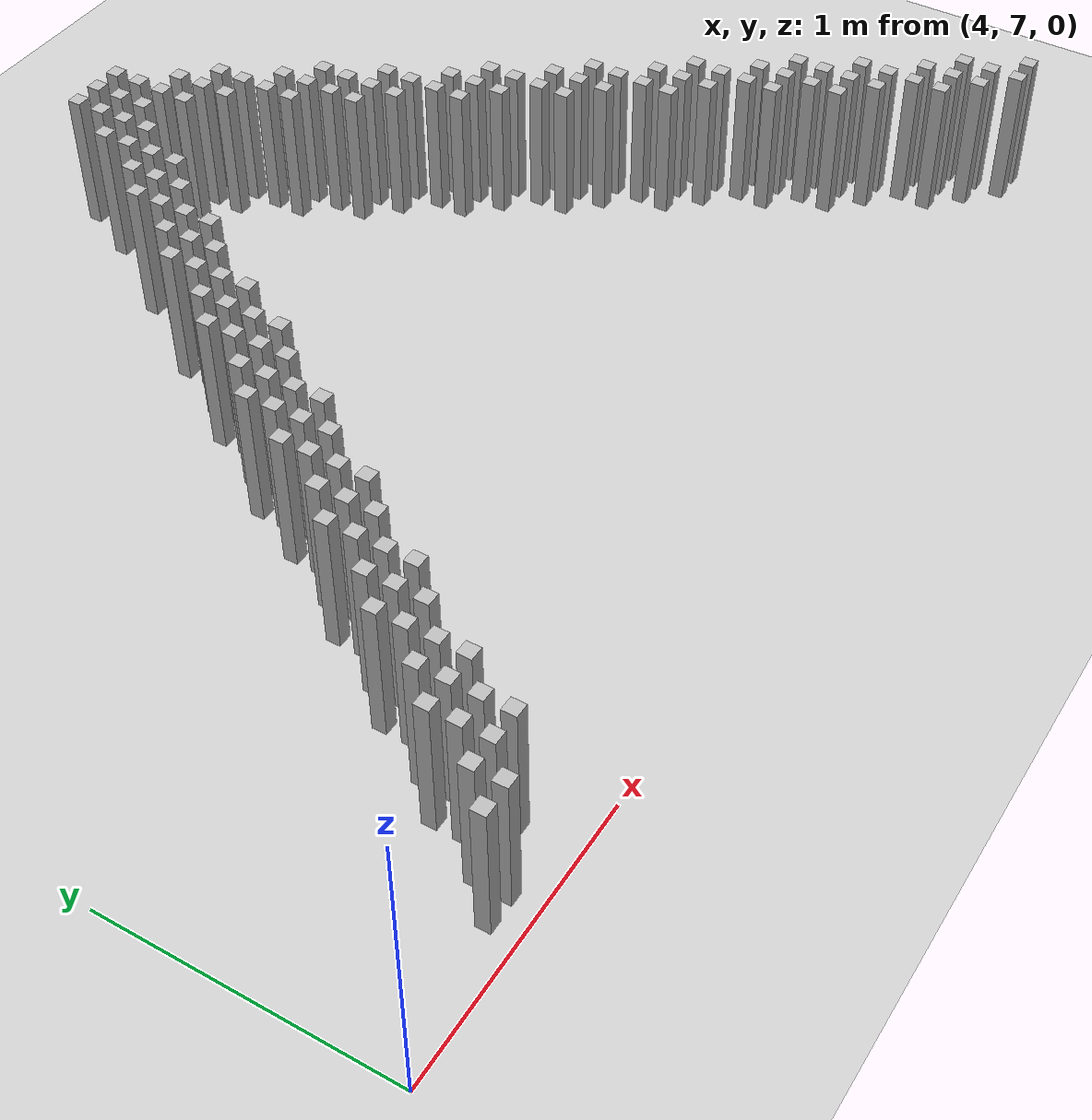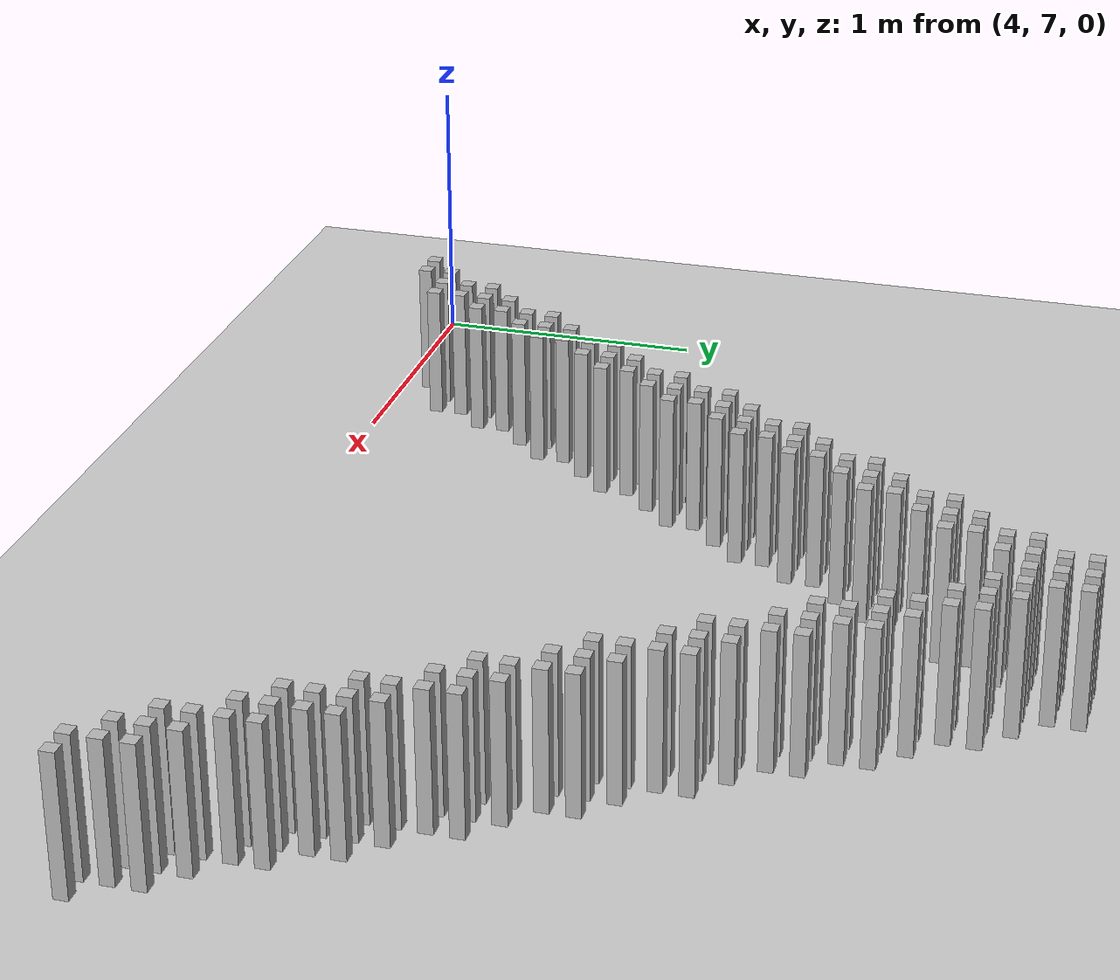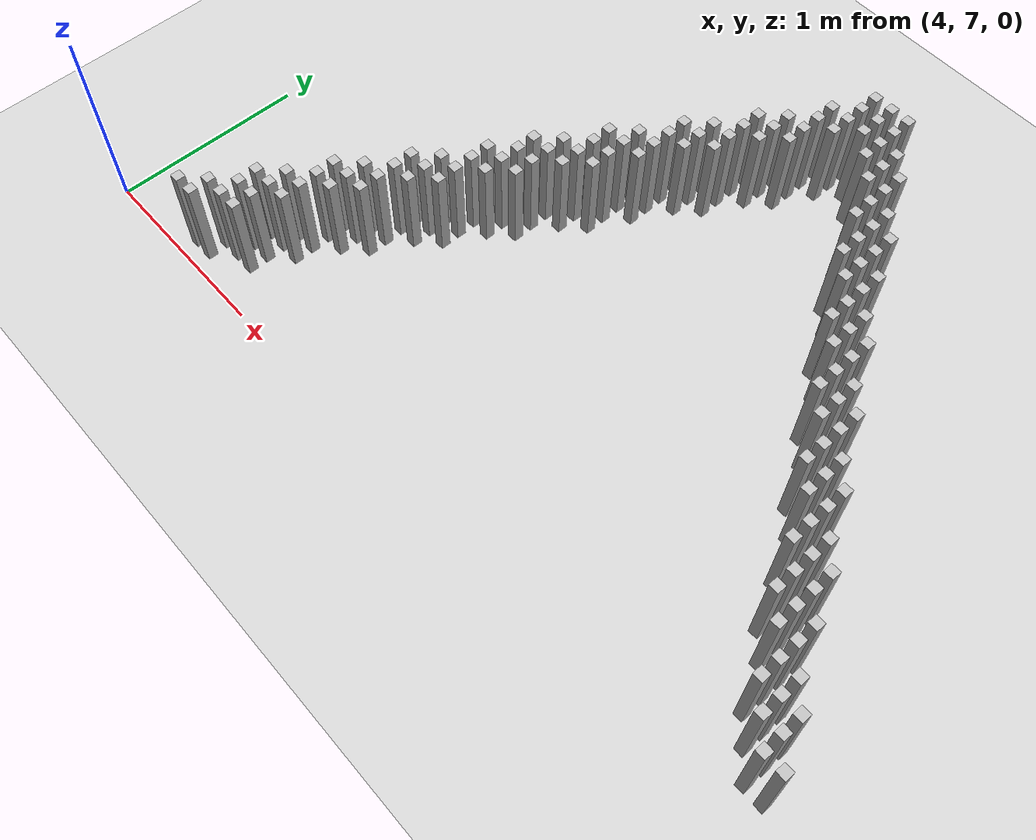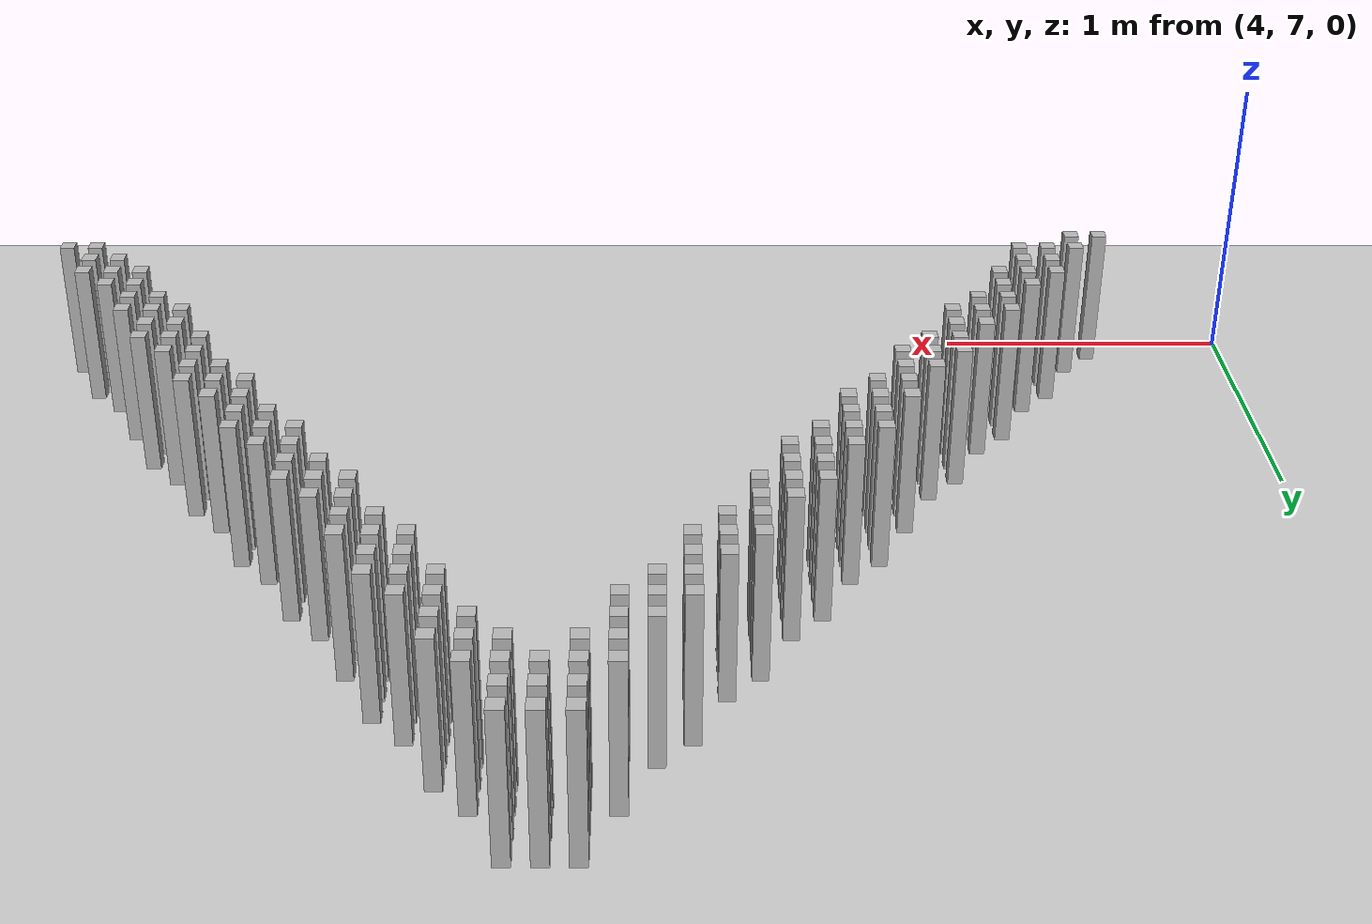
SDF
<sdf version="1.6">
 <world name="default_world">
  <include><uri>model://sun</uri></include>
  <include><uri>model://ground_plane</uri></include>
  <model name="wall_0">
   <static>true</static>
   <link name="link">
    <collision name="collision"><geometry><box><size>0.05 0.05 0.5</size></box></geometry></collision>
    <visual name="visual"><geometry><box><size>0.05 0.05 0.5</size></box></geometry></visual>
    <pose>6.300000000000001 9.9 0.25 0 0 0</pose>
   </link>
  </model>
  <model name="wall_1">
   <static>true</static>
   <link name="link">
    <collision name="collision"><geometry><box><size>0.05 0.05 0.5</size></box></geometry></collision>
    <visual name="visual"><geometry><box><size>0.05 0.05 0.5</size></box></geometry></visual>
    <pose>6.4 9.9 0.25 0 0 0</pose>
   </link>
  </model>
  <model name="wall_2">
   <static>true</static>
   <link name="link">
    <collision name="collision"><geometry><box><size>0.05 0.05 0.5</size></box></geometry></collision>
    <visual name="visual"><geometry><box><size>0.05 0.05 0.5</size></box></geometry></visual>
    <pose>6.5 9.9 0.25 0 0 0</pose>
   </link>
  </model>
  <model name="wall_3">
   <static>true</static>
   <link name="link">
    <collision name="collision"><geometry><box><size>0.05 0.05 0.5</size></box></geometry></collision>
    <visual name="visual"><geometry><box><size>0.05 0.05 0.5</size></box></geometry></visual>
    <pose>6.300000000000001 9.8 0.25 0 0 0</pose>
   </link>
  </model>
  <model name="wall_4">
   <static>true</static>
   <link name="link">
    <collision name="collision"><geometry><box><size>0.05 0.05 0.5</size></box></geometry></collision>
    <visual name="visual"><geometry><box><size>0.05 0.05 0.5</size></box></geometry></visual>
    <pose>6.4 9.8 0.25 0 0 0</pose>
   </link>
  </model>
  <model name="wall_5">
   <static>true</static>
   <link name="link">
    <collision name="collision"><geometry><box><size>0.05 0.05 0.5</size></box></geometry></collision>
    <visual name="visual"><geometry><box><size>0.05 0.05 0.5</size></box></geometry></visual>
    <pose>6.5 9.8 0.25 0 0 0</pose>
   </link>
  </model>
  <model name="wall_6">
   <static>true</static>
   <link name="link">
    <collision name="collision"><geometry><box><size>0.05 0.05 0.5</size></box></geometry></collision>
    <visual name="visual"><geometry><box><size>0.05 0.05 0.5</size></box></geometry></visual>
    <pose>6.2 9.700000000000001 0.25 0 0 0</pose>
   </link>
  </model>
  <model name="wall_7">
   <static>true</static>
   <link name="link">
    <collision name="collision"><geometry><box><size>0.05 0.05 0.5</size></box></geometry></collision>
    <visual name="visual"><geometry><box><size>0.05 0.05 0.5</size></box></geometry></visual>
    <pose>6.300000000000001 9.700000000000001 0.25 0 0 0</pose>
   </link>
  </model>
  <model name="wall_8">
   <static>true</static>
   <link name="link">
    <collision name="collision"><geometry><box><size>0.05 0.05 0.5</size></box></geometry></collision>
    <visual name="visual"><geometry><box><size>0.05 0.05 0.5</size></box></geometry></visual>
    <pose>6.4 9.700000000000001 0.25 0 0 0</pose>
   </link>
  </model>
  <model name="wall_9">
   <static>true</static>
   <link name="link">
    <collision name="collision"><geometry><box><size>0.05 0.05 0.5</size></box></geometry></collision>
    <visual name="visual"><geometry><box><size>0.05 0.05 0.5</size></box></geometry></visual>
    <pose>6.5 9.700000000000001 0.25 0 0 0</pose>
   </link>
  </model>
  <model name="wall_10">
   <static>true</static>
   <link name="link">
    <collision name="collision"><geometry><box><size>0.05 0.05 0.5</size></box></geometry></collision>
    <visual name="visual"><geometry><box><size>0.05 0.05 0.5</size></box></geometry></visual>
    <pose>6.6000000000000005 9.700000000000001 0.25 0 0 0</pose>
   </link>
  </model>
  <model name="wall_11">
   <static>true</static>
   <link name="link">
    <collision name="collision"><geometry><box><size>0.05 0.05 0.5</size></box></geometry></collision>
    <visual name="visual"><geometry><box><size>0.05 0.05 0.5</size></box></geometry></visual>
    <pose>6.2 9.600000000000001 0.25 0 0 0</pose>
   </link>
  </model>
  <model name="wall_12">
   <static>true</static>
   <link name="link">
    <collision name="collision"><geometry><box><size>0.05 0.05 0.5</size></box></geometry></collision>
    <visual name="visual"><geometry><box><size>0.05 0.05 0.5</size></box></geometry></visual>
    <pose>6.300000000000001 9.600000000000001 0.25 0 0 0</pose>
   </link>
  </model>
  <model name="wall_13">
   <static>true</static>
   <link name="link">
    <collision name="collision"><geometry><box><size>0.05 0.05 0.5</size></box></geometry></collision>
    <visual name="visual"><geometry><box><size>0.05 0.05 0.5</size></box></geometry></visual>
    <pose>6.5 9.600000000000001 0.25 0 0 0</pose>
   </link>
  </model>
  <model name="wall_14">
   <static>true</static>
   <link name="link">
    <collision name="collision"><geometry><box><size>0.05 0.05 0.5</size></box></geometry></collision>
    <visual name="visual"><geometry><box><size>0.05 0.05 0.5</size></box></geometry></visual>
    <pose>6.6000000000000005 9.600000000000001 0.25 0 0 0</pose>
   </link>
  </model>
  <model name="wall_15">
   <static>true</static>
   <link name="link">
    <collision name="collision"><geometry><box><size>0.05 0.05 0.5</size></box></geometry></collision>
    <visual name="visual"><geometry><box><size>0.05 0.05 0.5</size></box></geometry></visual>
    <pose>6.7 9.600000000000001 0.25 0 0 0</pose>
   </link>
  </model>
  <model name="wall_16">
   <static>true</static>
   <link name="link">
    <collision name="collision"><geometry><box><size>0.05 0.05 0.5</size></box></geometry></collision>
    <visual name="visual"><geometry><box><size>0.05 0.05 0.5</size></box></geometry></visual>
    <pose>6.1000000000000005 9.5 0.25 0 0 0</pose>
   </link>
  </model>
  <model name="wall_17">
   <static>true</static>
   <link name="link">
    <collision name="collision"><geometry><box><size>0.05 0.05 0.5</size></box></geometry></collision>
    <visual name="visual"><geometry><box><size>0.05 0.05 0.5</size></box></geometry></visual>
    <pose>6.2 9.5 0.25 0 0 0</pose>
   </link>
  </model>
  <model name="wall_18">
   <static>true</static>
   <link name="link">
    <collision name="collision"><geometry><box><size>0.05 0.05 0.5</size></box></geometry></collision>
    <visual name="visual"><geometry><box><size>0.05 0.05 0.5</size></box></geometry></visual>
    <pose>6.6000000000000005 9.5 0.25 0 0 0</pose>
   </link>
  </model>
  <model name="wall_19">
   <static>true</static>
   <link name="link">
    <collision name="collision"><geometry><box><size>0.05 0.05 0.5</size></box></geometry></collision>
    <visual name="visual"><geometry><box><size>0.05 0.05 0.5</size></box></geometry></visual>
    <pose>6.7 9.5 0.25 0 0 0</pose>
   </link>
  </model>
  <model name="wall_20">
   <static>true</static>
   <link name="link">
    <collision name="collision"><geometry><box><size>0.05 0.05 0.5</size></box></geometry></collision>
    <visual name="visual"><geometry><box><size>0.05 0.05 0.5</size></box></geometry></visual>
    <pose>6.0 9.4 0.25 0 0 0</pose>
   </link>
  </model>
  <model name="wall_21">
   <static>true</static>
   <link name="link">
    <collision name="collision"><geometry><box><size>0.05 0.05 0.5</size></box></geometry></collision>
    <visual name="visual"><geometry><box><size>0.05 0.05 0.5</size></box></geometry></visual>
    <pose>6.1000000000000005 9.4 0.25 0 0 0</pose>
   </link>
  </model>
  <model name="wall_22">
   <static>true</static>
   <link name="link">
    <collision name="collision"><geometry><box><size>0.05 0.05 0.5</size></box></geometry></collision>
    <visual name="visual"><geometry><box><size>0.05 0.05 0.5</size></box></geometry></visual>
    <pose>6.2 9.4 0.25 0 0 0</pose>
   </link>
  </model>
  <model name="wall_23">
   <static>true</static>
   <link name="link">
    <collision name="collision"><geometry><box><size>0.05 0.05 0.5</size></box></geometry></collision>
    <visual name="visual"><geometry><box><size>0.05 0.05 0.5</size></box></geometry></visual>
    <pose>6.7 9.4 0.25 0 0 0</pose>
   </link>
  </model>
  <model name="wall_24">
   <static>true</static>
   <link name="link">
    <collision name="collision"><geometry><box><size>0.05 0.05 0.5</size></box></geometry></collision>
    <visual name="visual"><geometry><box><size>0.05 0.05 0.5</size></box></geometry></visual>
    <pose>6.800000000000001 9.4 0.25 0 0 0</pose>
   </link>
  </model>
  <model name="wall_25">
   <static>true</static>
   <link name="link">
    <collision name="collision"><geometry><box><size>0.05 0.05 0.5</size></box></geometry></collision>
    <visual name="visual"><geometry><box><size>0.05 0.05 0.5</size></box></geometry></visual>
    <pose>6.0 9.3 0.25 0 0 0</pose>
   </link>
  </model>
  <model name="wall_26">
   <static>true</static>
   <link name="link">
    <collision name="collision"><geometry><box><size>0.05 0.05 0.5</size></box></geometry></collision>
    <visual name="visual"><geometry><box><size>0.05 0.05 0.5</size></box></geometry></visual>
    <pose>6.1000000000000005 9.3 0.25 0 0 0</pose>
   </link>
  </model>
  <model name="wall_27">
   <static>true</static>
   <link name="link">
    <collision name="collision"><geometry><box><size>0.05 0.05 0.5</size></box></geometry></collision>
    <visual name="visual"><geometry><box><size>0.05 0.05 0.5</size></box></geometry></visual>
    <pose>6.7 9.3 0.25 0 0 0</pose>
   </link>
  </model>
  <model name="wall_28">
   <static>true</static>
   <link name="link">
    <collision name="collision"><geometry><box><size>0.05 0.05 0.5</size></box></geometry></collision>
    <visual name="visual"><geometry><box><size>0.05 0.05 0.5</size></box></geometry></visual>
    <pose>6.800000000000001 9.3 0.25 0 0 0</pose>
   </link>
  </model>
  <model name="wall_29">
   <static>true</static>
   <link name="link">
    <collision name="collision"><geometry><box><size>0.05 0.05 0.5</size></box></geometry></collision>
    <visual name="visual"><geometry><box><size>0.05 0.05 0.5</size></box></geometry></visual>
    <pose>6.9 9.3 0.25 0 0 0</pose>
   </link>
  </model>
  <model name="wall_30">
   <static>true</static>
   <link name="link">
    <collision name="collision"><geometry><box><size>0.05 0.05 0.5</size></box></geometry></collision>
    <visual name="visual"><geometry><box><size>0.05 0.05 0.5</size></box></geometry></visual>
    <pose>5.9 9.200000000000001 0.25 0 0 0</pose>
   </link>
  </model>
  <model name="wall_31">
   <static>true</static>
   <link name="link">
    <collision name="collision"><geometry><box><size>0.05 0.05 0.5</size></box></geometry></collision>
    <visual name="visual"><geometry><box><size>0.05 0.05 0.5</size></box></geometry></visual>
    <pose>6.0 9.200000000000001 0.25 0 0 0</pose>
   </link>
  </model>
  <model name="wall_32">
   <static>true</static>
   <link name="link">
    <collision name="collision"><geometry><box><size>0.05 0.05 0.5</size></box></geometry></collision>
    <visual name="visual"><geometry><box><size>0.05 0.05 0.5</size></box></geometry></visual>
    <pose>6.800000000000001 9.200000000000001 0.25 0 0 0</pose>
   </link>
  </model>
  <model name="wall_33">
   <static>true</static>
   <link name="link">
    <collision name="collision"><geometry><box><size>0.05 0.05 0.5</size></box></geometry></collision>
    <visual name="visual"><geometry><box><size>0.05 0.05 0.5</size></box></geometry></visual>
    <pose>6.9 9.200000000000001 0.25 0 0 0</pose>
   </link>
  </model>
  <model name="wall_34">
   <static>true</static>
   <link name="link">
    <collision name="collision"><geometry><box><size>0.05 0.05 0.5</size></box></geometry></collision>
    <visual name="visual"><geometry><box><size>0.05 0.05 0.5</size></box></geometry></visual>
    <pose>5.800000000000001 9.1 0.25 0 0 0</pose>
   </link>
  </model>
  <model name="wall_35">
   <static>true</static>
   <link name="link">
    <collision name="collision"><geometry><box><size>0.05 0.05 0.5</size></box></geometry></collision>
    <visual name="visual"><geometry><box><size>0.05 0.05 0.5</size></box></geometry></visual>
    <pose>5.9 9.1 0.25 0 0 0</pose>
   </link>
  </model>
  <model name="wall_36">
   <static>true</static>
   <link name="link">
    <collision name="collision"><geometry><box><size>0.05 0.05 0.5</size></box></geometry></collision>
    <visual name="visual"><geometry><box><size>0.05 0.05 0.5</size></box></geometry></visual>
    <pose>6.0 9.1 0.25 0 0 0</pose>
   </link>
  </model>
  <model name="wall_37">
   <static>true</static>
   <link name="link">
    <collision name="collision"><geometry><box><size>0.05 0.05 0.5</size></box></geometry></collision>
    <visual name="visual"><geometry><box><size>0.05 0.05 0.5</size></box></geometry></visual>
    <pose>6.800000000000001 9.1 0.25 0 0 0</pose>
   </link>
  </model>
  <model name="wall_38">
   <static>true</static>
   <link name="link">
    <collision name="collision"><geometry><box><size>0.05 0.05 0.5</size></box></geometry></collision>
    <visual name="visual"><geometry><box><size>0.05 0.05 0.5</size></box></geometry></visual>
    <pose>6.9 9.1 0.25 0 0 0</pose>
   </link>
  </model>
  <model name="wall_39">
   <static>true</static>
   <link name="link">
    <collision name="collision"><geometry><box><size>0.05 0.05 0.5</size></box></geometry></collision>
    <visual name="visual"><geometry><box><size>0.05 0.05 0.5</size></box></geometry></visual>
    <pose>7.0 9.1 0.25 0 0 0</pose>
   </link>
  </model>
  <model name="wall_40">
   <static>true</static>
   <link name="link">
    <collision name="collision"><geometry><box><size>0.05 0.05 0.5</size></box></geometry></collision>
    <visual name="visual"><geometry><box><size>0.05 0.05 0.5</size></box></geometry></visual>
    <pose>5.800000000000001 9.0 0.25 0 0 0</pose>
   </link>
  </model>
  <model name="wall_41">
   <static>true</static>
   <link name="link">
    <collision name="collision"><geometry><box><size>0.05 0.05 0.5</size></box></geometry></collision>
    <visual name="visual"><geometry><box><size>0.05 0.05 0.5</size></box></geometry></visual>
    <pose>5.9 9.0 0.25 0 0 0</pose>
   </link>
  </model>
  <model name="wall_42">
   <static>true</static>
   <link name="link">
    <collision name="collision"><geometry><box><size>0.05 0.05 0.5</size></box></geometry></collision>
    <visual name="visual"><geometry><box><size>0.05 0.05 0.5</size></box></geometry></visual>
    <pose>6.9 9.0 0.25 0 0 0</pose>
   </link>
  </model>
  <model name="wall_43">
   <static>true</static>
   <link name="link">
    <collision name="collision"><geometry><box><size>0.05 0.05 0.5</size></box></geometry></collision>
    <visual name="visual"><geometry><box><size>0.05 0.05 0.5</size></box></geometry></visual>
    <pose>7.0 9.0 0.25 0 0 0</pose>
   </link>
  </model>
  <model name="wall_44">
   <static>true</static>
   <link name="link">
    <collision name="collision"><geometry><box><size>0.05 0.05 0.5</size></box></geometry></collision>
    <visual name="visual"><geometry><box><size>0.05 0.05 0.5</size></box></geometry></visual>
    <pose>5.7 8.9 0.25 0 0 0</pose>
   </link>
  </model>
  <model name="wall_45">
   <static>true</static>
   <link name="link">
    <collision name="collision"><geometry><box><size>0.05 0.05 0.5</size></box></geometry></collision>
    <visual name="visual"><geometry><box><size>0.05 0.05 0.5</size></box></geometry></visual>
    <pose>5.800000000000001 8.9 0.25 0 0 0</pose>
   </link>
  </model>
  <model name="wall_46">
   <static>true</static>
   <link name="link">
    <collision name="collision"><geometry><box><size>0.05 0.05 0.5</size></box></geometry></collision>
    <visual name="visual"><geometry><box><size>0.05 0.05 0.5</size></box></geometry></visual>
    <pose>7.0 8.9 0.25 0 0 0</pose>
   </link>
  </model>
  <model name="wall_47">
   <static>true</static>
   <link name="link">
    <collision name="collision"><geometry><box><size>0.05 0.05 0.5</size></box></geometry></collision>
    <visual name="visual"><geometry><box><size>0.05 0.05 0.5</size></box></geometry></visual>
    <pose>7.1000000000000005 8.9 0.25 0 0 0</pose>
   </link>
  </model>
  <model name="wall_48">
   <static>true</static>
   <link name="link">
    <collision name="collision"><geometry><box><size>0.05 0.05 0.5</size></box></geometry></collision>
    <visual name="visual"><geometry><box><size>0.05 0.05 0.5</size></box></geometry></visual>
    <pose>5.6000000000000005 8.8 0.25 0 0 0</pose>
   </link>
  </model>
  <model name="wall_49">
   <static>true</static>
   <link name="link">
    <collision name="collision"><geometry><box><size>0.05 0.05 0.5</size></box></geometry></collision>
    <visual name="visual"><geometry><box><size>0.05 0.05 0.5</size></box></geometry></visual>
    <pose>5.7 8.8 0.25 0 0 0</pose>
   </link>
  </model>
  <model name="wall_50">
   <static>true</static>
   <link name="link">
    <collision name="collision"><geometry><box><size>0.05 0.05 0.5</size></box></geometry></collision>
    <visual name="visual"><geometry><box><size>0.05 0.05 0.5</size></box></geometry></visual>
    <pose>5.800000000000001 8.8 0.25 0 0 0</pose>
   </link>
  </model>
  <model name="wall_51">
   <static>true</static>
   <link name="link">
    <collision name="collision"><geometry><box><size>0.05 0.05 0.5</size></box></geometry></collision>
    <visual name="visual"><geometry><box><size>0.05 0.05 0.5</size></box></geometry></visual>
    <pose>7.0 8.8 0.25 0 0 0</pose>
   </link>
  </model>
  <model name="wall_52">
   <static>true</static>
   <link name="link">
    <collision name="collision"><geometry><box><size>0.05 0.05 0.5</size></box></geometry></collision>
    <visual name="visual"><geometry><box><size>0.05 0.05 0.5</size></box></geometry></visual>
    <pose>7.1000000000000005 8.8 0.25 0 0 0</pose>
   </link>
  </model>
  <model name="wall_53">
   <static>true</static>
   <link name="link">
    <collision name="collision"><geometry><box><size>0.05 0.05 0.5</size></box></geometry></collision>
    <visual name="visual"><geometry><box><size>0.05 0.05 0.5</size></box></geometry></visual>
    <pose>7.2 8.8 0.25 0 0 0</pose>
   </link>
  </model>
  <model name="wall_54">
   <static>true</static>
   <link name="link">
    <collision name="collision"><geometry><box><size>0.05 0.05 0.5</size></box></geometry></collision>
    <visual name="visual"><geometry><box><size>0.05 0.05 0.5</size></box></geometry></visual>
    <pose>5.6000000000000005 8.700000000000001 0.25 0 0 0</pose>
   </link>
  </model>
  <model name="wall_55">
   <static>true</static>
   <link name="link">
    <collision name="collision"><geometry><box><size>0.05 0.05 0.5</size></box></geometry></collision>
    <visual name="visual"><geometry><box><size>0.05 0.05 0.5</size></box></geometry></visual>
    <pose>5.7 8.700000000000001 0.25 0 0 0</pose>
   </link>
  </model>
  <model name="wall_56">
   <static>true</static>
   <link name="link">
    <collision name="collision"><geometry><box><size>0.05 0.05 0.5</size></box></geometry></collision>
    <visual name="visual"><geometry><box><size>0.05 0.05 0.5</size></box></geometry></visual>
    <pose>7.1000000000000005 8.700000000000001 0.25 0 0 0</pose>
   </link>
  </model>
  <model name="wall_57">
   <static>true</static>
   <link name="link">
    <collision name="collision"><geometry><box><size>0.05 0.05 0.5</size></box></geometry></collision>
    <visual name="visual"><geometry><box><size>0.05 0.05 0.5</size></box></geometry></visual>
    <pose>7.2 8.700000000000001 0.25 0 0 0</pose>
   </link>
  </model>
  <model name="wall_58">
   <static>true</static>
   <link name="link">
    <collision name="collision"><geometry><box><size>0.05 0.05 0.5</size></box></geometry></collision>
    <visual name="visual"><geometry><box><size>0.05 0.05 0.5</size></box></geometry></visual>
    <pose>5.5 8.6 0.25 0 0 0</pose>
   </link>
  </model>
  <model name="wall_59">
   <static>true</static>
   <link name="link">
    <collision name="collision"><geometry><box><size>0.05 0.05 0.5</size></box></geometry></collision>
    <visual name="visual"><geometry><box><size>0.05 0.05 0.5</size></box></geometry></visual>
    <pose>5.6000000000000005 8.6 0.25 0 0 0</pose>
   </link>
  </model>
  <model name="wall_60">
   <static>true</static>
   <link name="link">
    <collision name="collision"><geometry><box><size>0.05 0.05 0.5</size></box></geometry></collision>
    <visual name="visual"><geometry><box><size>0.05 0.05 0.5</size></box></geometry></visual>
    <pose>5.7 8.6 0.25 0 0 0</pose>
   </link>
  </model>
  <model name="wall_61">
   <static>true</static>
   <link name="link">
    <collision name="collision"><geometry><box><size>0.05 0.05 0.5</size></box></geometry></collision>
    <visual name="visual"><geometry><box><size>0.05 0.05 0.5</size></box></geometry></visual>
    <pose>7.2 8.6 0.25 0 0 0</pose>
   </link>
  </model>
  <model name="wall_62">
   <static>true</static>
   <link name="link">
    <collision name="collision"><geometry><box><size>0.05 0.05 0.5</size></box></geometry></collision>
    <visual name="visual"><geometry><box><size>0.05 0.05 0.5</size></box></geometry></visual>
    <pose>7.300000000000001 8.6 0.25 0 0 0</pose>
   </link>
  </model>
  <model name="wall_63">
   <static>true</static>
   <link name="link">
    <collision name="collision"><geometry><box><size>0.05 0.05 0.5</size></box></geometry></collision>
    <visual name="visual"><geometry><box><size>0.05 0.05 0.5</size></box></geometry></visual>
    <pose>5.4 8.5 0.25 0 0 0</pose>
   </link>
  </model>
  <model name="wall_64">
   <static>true</static>
   <link name="link">
    <collision name="collision"><geometry><box><size>0.05 0.05 0.5</size></box></geometry></collision>
    <visual name="visual"><geometry><box><size>0.05 0.05 0.5</size></box></geometry></visual>
    <pose>5.5 8.5 0.25 0 0 0</pose>
   </link>
  </model>
  <model name="wall_65">
   <static>true</static>
   <link name="link">
    <collision name="collision"><geometry><box><size>0.05 0.05 0.5</size></box></geometry></collision>
    <visual name="visual"><geometry><box><size>0.05 0.05 0.5</size></box></geometry></visual>
    <pose>5.6000000000000005 8.5 0.25 0 0 0</pose>
   </link>
  </model>
  <model name="wall_66">
   <static>true</static>
   <link name="link">
    <collision name="collision"><geometry><box><size>0.05 0.05 0.5</size></box></geometry></collision>
    <visual name="visual"><geometry><box><size>0.05 0.05 0.5</size></box></geometry></visual>
    <pose>7.2 8.5 0.25 0 0 0</pose>
   </link>
  </model>
  <model name="wall_67">
   <static>true</static>
   <link name="link">
    <collision name="collision"><geometry><box><size>0.05 0.05 0.5</size></box></geometry></collision>
    <visual name="visual"><geometry><box><size>0.05 0.05 0.5</size></box></geometry></visual>
    <pose>7.300000000000001 8.5 0.25 0 0 0</pose>
   </link>
  </model>
  <model name="wall_68">
   <static>true</static>
   <link name="link">
    <collision name="collision"><geometry><box><size>0.05 0.05 0.5</size></box></geometry></collision>
    <visual name="visual"><geometry><box><size>0.05 0.05 0.5</size></box></geometry></visual>
    <pose>7.4 8.5 0.25 0 0 0</pose>
   </link>
  </model>
  <model name="wall_69">
   <static>true</static>
   <link name="link">
    <collision name="collision"><geometry><box><size>0.05 0.05 0.5</size></box></geometry></collision>
    <visual name="visual"><geometry><box><size>0.05 0.05 0.5</size></box></geometry></visual>
    <pose>5.4 8.4 0.25 0 0 0</pose>
   </link>
  </model>
  <model name="wall_70">
   <static>true</static>
   <link name="link">
    <collision name="collision"><geometry><box><size>0.05 0.05 0.5</size></box></geometry></collision>
    <visual name="visual"><geometry><box><size>0.05 0.05 0.5</size></box></geometry></visual>
    <pose>5.5 8.4 0.25 0 0 0</pose>
   </link>
  </model>
  <model name="wall_71">
   <static>true</static>
   <link name="link">
    <collision name="collision"><geometry><box><size>0.05 0.05 0.5</size></box></geometry></collision>
    <visual name="visual"><geometry><box><size>0.05 0.05 0.5</size></box></geometry></visual>
    <pose>7.300000000000001 8.4 0.25 0 0 0</pose>
   </link>
  </model>
  <model name="wall_72">
   <static>true</static>
   <link name="link">
    <collision name="collision"><geometry><box><size>0.05 0.05 0.5</size></box></geometry></collision>
    <visual name="visual"><geometry><box><size>0.05 0.05 0.5</size></box></geometry></visual>
    <pose>7.4 8.4 0.25 0 0 0</pose>
   </link>
  </model>
  <model name="wall_73">
   <static>true</static>
   <link name="link">
    <collision name="collision"><geometry><box><size>0.05 0.05 0.5</size></box></geometry></collision>
    <visual name="visual"><geometry><box><size>0.05 0.05 0.5</size></box></geometry></visual>
    <pose>5.300000000000001 8.3 0.25 0 0 0</pose>
   </link>
  </model>
  <model name="wall_74">
   <static>true</static>
   <link name="link">
    <collision name="collision"><geometry><box><size>0.05 0.05 0.5</size></box></geometry></collision>
    <visual name="visual"><geometry><box><size>0.05 0.05 0.5</size></box></geometry></visual>
    <pose>5.4 8.3 0.25 0 0 0</pose>
   </link>
  </model>
  <model name="wall_75">
   <static>true</static>
   <link name="link">
    <collision name="collision"><geometry><box><size>0.05 0.05 0.5</size></box></geometry></collision>
    <visual name="visual"><geometry><box><size>0.05 0.05 0.5</size></box></geometry></visual>
    <pose>5.5 8.3 0.25 0 0 0</pose>
   </link>
  </model>
  <model name="wall_76">
   <static>true</static>
   <link name="link">
    <collision name="collision"><geometry><box><size>0.05 0.05 0.5</size></box></geometry></collision>
    <visual name="visual"><geometry><box><size>0.05 0.05 0.5</size></box></geometry></visual>
    <pose>7.4 8.3 0.25 0 0 0</pose>
   </link>
  </model>
  <model name="wall_77">
   <static>true</static>
   <link name="link">
    <collision name="collision"><geometry><box><size>0.05 0.05 0.5</size></box></geometry></collision>
    <visual name="visual"><geometry><box><size>0.05 0.05 0.5</size></box></geometry></visual>
    <pose>7.5 8.3 0.25 0 0 0</pose>
   </link>
  </model>
  <model name="wall_78">
   <static>true</static>
   <link name="link">
    <collision name="collision"><geometry><box><size>0.05 0.05 0.5</size></box></geometry></collision>
    <visual name="visual"><geometry><box><size>0.05 0.05 0.5</size></box></geometry></visual>
    <pose>5.300000000000001 8.200000000000001 0.25 0 0 0</pose>
   </link>
  </model>
  <model name="wall_79">
   <static>true</static>
   <link name="link">
    <collision name="collision"><geometry><box><size>0.05 0.05 0.5</size></box></geometry></collision>
    <visual name="visual"><geometry><box><size>0.05 0.05 0.5</size></box></geometry></visual>
    <pose>5.4 8.200000000000001 0.25 0 0 0</pose>
   </link>
  </model>
  <model name="wall_80">
   <static>true</static>
   <link name="link">
    <collision name="collision"><geometry><box><size>0.05 0.05 0.5</size></box></geometry></collision>
    <visual name="visual"><geometry><box><size>0.05 0.05 0.5</size></box></geometry></visual>
    <pose>7.4 8.200000000000001 0.25 0 0 0</pose>
   </link>
  </model>
  <model name="wall_81">
   <static>true</static>
   <link name="link">
    <collision name="collision"><geometry><box><size>0.05 0.05 0.5</size></box></geometry></collision>
    <visual name="visual"><geometry><box><size>0.05 0.05 0.5</size></box></geometry></visual>
    <pose>7.5 8.200000000000001 0.25 0 0 0</pose>
   </link>
  </model>
  <model name="wall_82">
   <static>true</static>
   <link name="link">
    <collision name="collision"><geometry><box><size>0.05 0.05 0.5</size></box></geometry></collision>
    <visual name="visual"><geometry><box><size>0.05 0.05 0.5</size></box></geometry></visual>
    <pose>7.6000000000000005 8.200000000000001 0.25 0 0 0</pose>
   </link>
  </model>
  <model name="wall_83">
   <static>true</static>
   <link name="link">
    <collision name="collision"><geometry><box><size>0.05 0.05 0.5</size></box></geometry></collision>
    <visual name="visual"><geometry><box><size>0.05 0.05 0.5</size></box></geometry></visual>
    <pose>5.2 8.1 0.25 0 0 0</pose>
   </link>
  </model>
  <model name="wall_84">
   <static>true</static>
   <link name="link">
    <collision name="collision"><geometry><box><size>0.05 0.05 0.5</size></box></geometry></collision>
    <visual name="visual"><geometry><box><size>0.05 0.05 0.5</size></box></geometry></visual>
    <pose>5.300000000000001 8.1 0.25 0 0 0</pose>
   </link>
  </model>
  <model name="wall_85">
   <static>true</static>
   <link name="link">
    <collision name="collision"><geometry><box><size>0.05 0.05 0.5</size></box></geometry></collision>
    <visual name="visual"><geometry><box><size>0.05 0.05 0.5</size></box></geometry></visual>
    <pose>7.5 8.1 0.25 0 0 0</pose>
   </link>
  </model>
  <model name="wall_86">
   <static>true</static>
   <link name="link">
    <collision name="collision"><geometry><box><size>0.05 0.05 0.5</size></box></geometry></collision>
    <visual name="visual"><geometry><box><size>0.05 0.05 0.5</size></box></geometry></visual>
    <pose>7.6000000000000005 8.1 0.25 0 0 0</pose>
   </link>
  </model>
  <model name="wall_87">
   <static>true</static>
   <link name="link">
    <collision name="collision"><geometry><box><size>0.05 0.05 0.5</size></box></geometry></collision>
    <visual name="visual"><geometry><box><size>0.05 0.05 0.5</size></box></geometry></visual>
    <pose>5.1000000000000005 8.0 0.25 0 0 0</pose>
   </link>
  </model>
  <model name="wall_88">
   <static>true</static>
   <link name="link">
    <collision name="collision"><geometry><box><size>0.05 0.05 0.5</size></box></geometry></collision>
    <visual name="visual"><geometry><box><size>0.05 0.05 0.5</size></box></geometry></visual>
    <pose>5.2 8.0 0.25 0 0 0</pose>
   </link>
  </model>
  <model name="wall_89">
   <static>true</static>
   <link name="link">
    <collision name="collision"><geometry><box><size>0.05 0.05 0.5</size></box></geometry></collision>
    <visual name="visual"><geometry><box><size>0.05 0.05 0.5</size></box></geometry></visual>
    <pose>5.300000000000001 8.0 0.25 0 0 0</pose>
   </link>
  </model>
  <model name="wall_90">
   <static>true</static>
   <link name="link">
    <collision name="collision"><geometry><box><size>0.05 0.05 0.5</size></box></geometry></collision>
    <visual name="visual"><geometry><box><size>0.05 0.05 0.5</size></box></geometry></visual>
    <pose>7.6000000000000005 8.0 0.25 0 0 0</pose>
   </link>
  </model>
  <model name="wall_91">
   <static>true</static>
   <link name="link">
    <collision name="collision"><geometry><box><size>0.05 0.05 0.5</size></box></geometry></collision>
    <visual name="visual"><geometry><box><size>0.05 0.05 0.5</size></box></geometry></visual>
    <pose>7.7 8.0 0.25 0 0 0</pose>
   </link>
  </model>
  <model name="wall_92">
   <static>true</static>
   <link name="link">
    <collision name="collision"><geometry><box><size>0.05 0.05 0.5</size></box></geometry></collision>
    <visual name="visual"><geometry><box><size>0.05 0.05 0.5</size></box></geometry></visual>
    <pose>5.1000000000000005 7.9 0.25 0 0 0</pose>
   </link>
  </model>
  <model name="wall_93">
   <static>true</static>
   <link name="link">
    <collision name="collision"><geometry><box><size>0.05 0.05 0.5</size></box></geometry></collision>
    <visual name="visual"><geometry><box><size>0.05 0.05 0.5</size></box></geometry></visual>
    <pose>5.2 7.9 0.25 0 0 0</pose>
   </link>
  </model>
  <model name="wall_94">
   <static>true</static>
   <link name="link">
    <collision name="collision"><geometry><box><size>0.05 0.05 0.5</size></box></geometry></collision>
    <visual name="visual"><geometry><box><size>0.05 0.05 0.5</size></box></geometry></visual>
    <pose>7.6000000000000005 7.9 0.25 0 0 0</pose>
   </link>
  </model>
  <model name="wall_95">
   <static>true</static>
   <link name="link">
    <collision name="collision"><geometry><box><size>0.05 0.05 0.5</size></box></geometry></collision>
    <visual name="visual"><geometry><box><size>0.05 0.05 0.5</size></box></geometry></visual>
    <pose>7.7 7.9 0.25 0 0 0</pose>
   </link>
  </model>
  <model name="wall_96">
   <static>true</static>
   <link name="link">
    <collision name="collision"><geometry><box><size>0.05 0.05 0.5</size></box></geometry></collision>
    <visual name="visual"><geometry><box><size>0.05 0.05 0.5</size></box></geometry></visual>
    <pose>7.800000000000001 7.9 0.25 0 0 0</pose>
   </link>
  </model>
  <model name="wall_97">
   <static>true</static>
   <link name="link">
    <collision name="collision"><geometry><box><size>0.05 0.05 0.5</size></box></geometry></collision>
    <visual name="visual"><geometry><box><size>0.05 0.05 0.5</size></box></geometry></visual>
    <pose>5.0 7.800000000000001 0.25 0 0 0</pose>
   </link>
  </model>
  <model name="wall_98">
   <static>true</static>
   <link name="link">
    <collision name="collision"><geometry><box><size>0.05 0.05 0.5</size></box></geometry></collision>
    <visual name="visual"><geometry><box><size>0.05 0.05 0.5</size></box></geometry></visual>
    <pose>5.1000000000000005 7.800000000000001 0.25 0 0 0</pose>
   </link>
  </model>
  <model name="wall_99">
   <static>true</static>
   <link name="link">
    <collision name="collision"><geometry><box><size>0.05 0.05 0.5</size></box></geometry></collision>
    <visual name="visual"><geometry><box><size>0.05 0.05 0.5</size></box></geometry></visual>
    <pose>7.7 7.800000000000001 0.25 0 0 0</pose>
   </link>
  </model>
  <model name="wall_100">
   <static>true</static>
   <link name="link">
    <collision name="collision"><geometry><box><size>0.05 0.05 0.5</size></box></geometry></collision>
    <visual name="visual"><geometry><box><size>0.05 0.05 0.5</size></box></geometry></visual>
    <pose>7.800000000000001 7.800000000000001 0.25 0 0 0</pose>
   </link>
  </model>
  <model name="wall_101">
   <static>true</static>
   <link name="link">
    <collision name="collision"><geometry><box><size>0.05 0.05 0.5</size></box></geometry></collision>
    <visual name="visual"><geometry><box><size>0.05 0.05 0.5</size></box></geometry></visual>
    <pose>4.9 7.7 0.25 0 0 0</pose>
   </link>
  </model>
  <model name="wall_102">
   <static>true</static>
   <link name="link">
    <collision name="collision"><geometry><box><size>0.05 0.05 0.5</size></box></geometry></collision>
    <visual name="visual"><geometry><box><size>0.05 0.05 0.5</size></box></geometry></visual>
    <pose>5.0 7.7 0.25 0 0 0</pose>
   </link>
  </model>
  <model name="wall_103">
   <static>true</static>
   <link name="link">
    <collision name="collision"><geometry><box><size>0.05 0.05 0.5</size></box></geometry></collision>
    <visual name="visual"><geometry><box><size>0.05 0.05 0.5</size></box></geometry></visual>
    <pose>5.1000000000000005 7.7 0.25 0 0 0</pose>
   </link>
  </model>
  <model name="wall_104">
   <static>true</static>
   <link name="link">
    <collision name="collision"><geometry><box><size>0.05 0.05 0.5</size></box></geometry></collision>
    <visual name="visual"><geometry><box><size>0.05 0.05 0.5</size></box></geometry></visual>
    <pose>7.7 7.7 0.25 0 0 0</pose>
   </link>
  </model>
  <model name="wall_105">
   <static>true</static>
   <link name="link">
    <collision name="collision"><geometry><box><size>0.05 0.05 0.5</size></box></geometry></collision>
    <visual name="visual"><geometry><box><size>0.05 0.05 0.5</size></box></geometry></visual>
    <pose>7.800000000000001 7.7 0.25 0 0 0</pose>
   </link>
  </model>
  <model name="wall_106">
   <static>true</static>
   <link name="link">
    <collision name="collision"><geometry><box><size>0.05 0.05 0.5</size></box></geometry></collision>
    <visual name="visual"><geometry><box><size>0.05 0.05 0.5</size></box></geometry></visual>
    <pose>7.9 7.7 0.25 0 0 0</pose>
   </link>
  </model>
  <model name="wall_107">
   <static>true</static>
   <link name="link">
    <collision name="collision"><geometry><box><size>0.05 0.05 0.5</size></box></geometry></collision>
    <visual name="visual"><geometry><box><size>0.05 0.05 0.5</size></box></geometry></visual>
    <pose>4.9 7.6000000000000005 0.25 0 0 0</pose>
   </link>
  </model>
  <model name="wall_108">
   <static>true</static>
   <link name="link">
    <collision name="collision"><geometry><box><size>0.05 0.05 0.5</size></box></geometry></collision>
    <visual name="visual"><geometry><box><size>0.05 0.05 0.5</size></box></geometry></visual>
    <pose>5.0 7.6000000000000005 0.25 0 0 0</pose>
   </link>
  </model>
  <model name="wall_109">
   <static>true</static>
   <link name="link">
    <collision name="collision"><geometry><box><size>0.05 0.05 0.5</size></box></geometry></collision>
    <visual name="visual"><geometry><box><size>0.05 0.05 0.5</size></box></geometry></visual>
    <pose>7.800000000000001 7.6000000000000005 0.25 0 0 0</pose>
   </link>
  </model>
  <model name="wall_110">
   <static>true</static>
   <link name="link">
    <collision name="collision"><geometry><box><size>0.05 0.05 0.5</size></box></geometry></collision>
    <visual name="visual"><geometry><box><size>0.05 0.05 0.5</size></box></geometry></visual>
    <pose>7.9 7.6000000000000005 0.25 0 0 0</pose>
   </link>
  </model>
  <model name="wall_111">
   <static>true</static>
   <link name="link">
    <collision name="collision"><geometry><box><size>0.05 0.05 0.5</size></box></geometry></collision>
    <visual name="visual"><geometry><box><size>0.05 0.05 0.5</size></box></geometry></visual>
    <pose>4.800000000000001 7.5 0.25 0 0 0</pose>
   </link>
  </model>
  <model name="wall_112">
   <static>true</static>
   <link name="link">
    <collision name="collision"><geometry><box><size>0.05 0.05 0.5</size></box></geometry></collision>
    <visual name="visual"><geometry><box><size>0.05 0.05 0.5</size></box></geometry></visual>
    <pose>4.9 7.5 0.25 0 0 0</pose>
   </link>
  </model>
  <model name="wall_113">
   <static>true</static>
   <link name="link">
    <collision name="collision"><geometry><box><size>0.05 0.05 0.5</size></box></geometry></collision>
    <visual name="visual"><geometry><box><size>0.05 0.05 0.5</size></box></geometry></visual>
    <pose>7.9 7.5 0.25 0 0 0</pose>
   </link>
  </model>
  <model name="wall_114">
   <static>true</static>
   <link name="link">
    <collision name="collision"><geometry><box><size>0.05 0.05 0.5</size></box></geometry></collision>
    <visual name="visual"><geometry><box><size>0.05 0.05 0.5</size></box></geometry></visual>
    <pose>8.0 7.5 0.25 0 0 0</pose>
   </link>
  </model>
  <model name="wall_115">
   <static>true</static>
   <link name="link">
    <collision name="collision"><geometry><box><size>0.05 0.05 0.5</size></box></geometry></collision>
    <visual name="visual"><geometry><box><size>0.05 0.05 0.5</size></box></geometry></visual>
    <pose>4.7 7.4 0.25 0 0 0</pose>
   </link>
  </model>
  <model name="wall_116">
   <static>true</static>
   <link name="link">
    <collision name="collision"><geometry><box><size>0.05 0.05 0.5</size></box></geometry></collision>
    <visual name="visual"><geometry><box><size>0.05 0.05 0.5</size></box></geometry></visual>
    <pose>4.800000000000001 7.4 0.25 0 0 0</pose>
   </link>
  </model>
  <model name="wall_117">
   <static>true</static>
   <link name="link">
    <collision name="collision"><geometry><box><size>0.05 0.05 0.5</size></box></geometry></collision>
    <visual name="visual"><geometry><box><size>0.05 0.05 0.5</size></box></geometry></visual>
    <pose>4.9 7.4 0.25 0 0 0</pose>
   </link>
  </model>
  <model name="wall_118">
   <static>true</static>
   <link name="link">
    <collision name="collision"><geometry><box><size>0.05 0.05 0.5</size></box></geometry></collision>
    <visual name="visual"><geometry><box><size>0.05 0.05 0.5</size></box></geometry></visual>
    <pose>7.9 7.4 0.25 0 0 0</pose>
   </link>
  </model>
  <model name="wall_119">
   <static>true</static>
   <link name="link">
    <collision name="collision"><geometry><box><size>0.05 0.05 0.5</size></box></geometry></collision>
    <visual name="visual"><geometry><box><size>0.05 0.05 0.5</size></box></geometry></visual>
    <pose>8.0 7.4 0.25 0 0 0</pose>
   </link>
  </model>
  <model name="wall_120">
   <static>true</static>
   <link name="link">
    <collision name="collision"><geometry><box><size>0.05 0.05 0.5</size></box></geometry></collision>
    <visual name="visual"><geometry><box><size>0.05 0.05 0.5</size></box></geometry></visual>
    <pose>8.1 7.4 0.25 0 0 0</pose>
   </link>
  </model>
  <model name="wall_121">
   <static>true</static>
   <link name="link">
    <collision name="collision"><geometry><box><size>0.05 0.05 0.5</size></box></geometry></collision>
    <visual name="visual"><geometry><box><size>0.05 0.05 0.5</size></box></geometry></visual>
    <pose>4.7 7.300000000000001 0.25 0 0 0</pose>
   </link>
  </model>
  <model name="wall_122">
   <static>true</static>
   <link name="link">
    <collision name="collision"><geometry><box><size>0.05 0.05 0.5</size></box></geometry></collision>
    <visual name="visual"><geometry><box><size>0.05 0.05 0.5</size></box></geometry></visual>
    <pose>4.800000000000001 7.300000000000001 0.25 0 0 0</pose>
   </link>
  </model>
  <model name="wall_123">
   <static>true</static>
   <link name="link">
    <collision name="collision"><geometry><box><size>0.05 0.05 0.5</size></box></geometry></collision>
    <visual name="visual"><geometry><box><size>0.05 0.05 0.5</size></box></geometry></visual>
    <pose>8.0 7.300000000000001 0.25 0 0 0</pose>
   </link>
  </model>
  <model name="wall_124">
   <static>true</static>
   <link name="link">
    <collision name="collision"><geometry><box><size>0.05 0.05 0.5</size></box></geometry></collision>
    <visual name="visual"><geometry><box><size>0.05 0.05 0.5</size></box></geometry></visual>
    <pose>8.1 7.300000000000001 0.25 0 0 0</pose>
   </link>
  </model>
  <model name="wall_125">
   <static>true</static>
   <link name="link">
    <collision name="collision"><geometry><box><size>0.05 0.05 0.5</size></box></geometry></collision>
    <visual name="visual"><geometry><box><size>0.05 0.05 0.5</size></box></geometry></visual>
    <pose>4.6000000000000005 7.2 0.25 0 0 0</pose>
   </link>
  </model>
  <model name="wall_126">
   <static>true</static>
   <link name="link">
    <collision name="collision"><geometry><box><size>0.05 0.05 0.5</size></box></geometry></collision>
    <visual name="visual"><geometry><box><size>0.05 0.05 0.5</size></box></geometry></visual>
    <pose>4.7 7.2 0.25 0 0 0</pose>
   </link>
  </model>
  <model name="wall_127">
   <static>true</static>
   <link name="link">
    <collision name="collision"><geometry><box><size>0.05 0.05 0.5</size></box></geometry></collision>
    <visual name="visual"><geometry><box><size>0.05 0.05 0.5</size></box></geometry></visual>
    <pose>4.800000000000001 7.2 0.25 0 0 0</pose>
   </link>
  </model>
  <model name="wall_128">
   <static>true</static>
   <link name="link">
    <collision name="collision"><geometry><box><size>0.05 0.05 0.5</size></box></geometry></collision>
    <visual name="visual"><geometry><box><size>0.05 0.05 0.5</size></box></geometry></visual>
    <pose>8.1 7.2 0.25 0 0 0</pose>
   </link>
  </model>
  <model name="wall_129">
   <static>true</static>
   <link name="link">
    <collision name="collision"><geometry><box><size>0.05 0.05 0.5</size></box></geometry></collision>
    <visual name="visual"><geometry><box><size>0.05 0.05 0.5</size></box></geometry></visual>
    <pose>8.200000000000001 7.2 0.25 0 0 0</pose>
   </link>
  </model>
  <model name="wall_130">
   <static>true</static>
   <link name="link">
    <collision name="collision"><geometry><box><size>0.05 0.05 0.5</size></box></geometry></collision>
    <visual name="visual"><geometry><box><size>0.05 0.05 0.5</size></box></geometry></visual>
    <pose>4.5 7.1000000000000005 0.25 0 0 0</pose>
   </link>
  </model>
  <model name="wall_131">
   <static>true</static>
   <link name="link">
    <collision name="collision"><geometry><box><size>0.05 0.05 0.5</size></box></geometry></collision>
    <visual name="visual"><geometry><box><size>0.05 0.05 0.5</size></box></geometry></visual>
    <pose>4.6000000000000005 7.1000000000000005 0.25 0 0 0</pose>
   </link>
  </model>
 </world>
</sdf>
